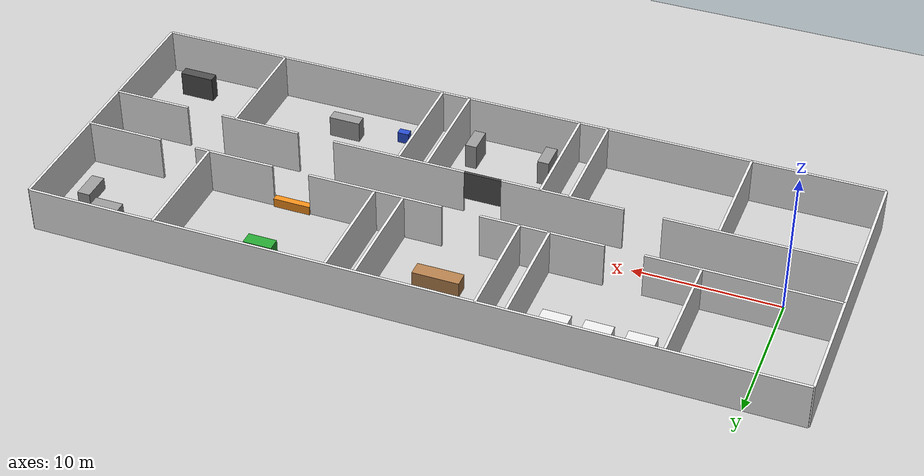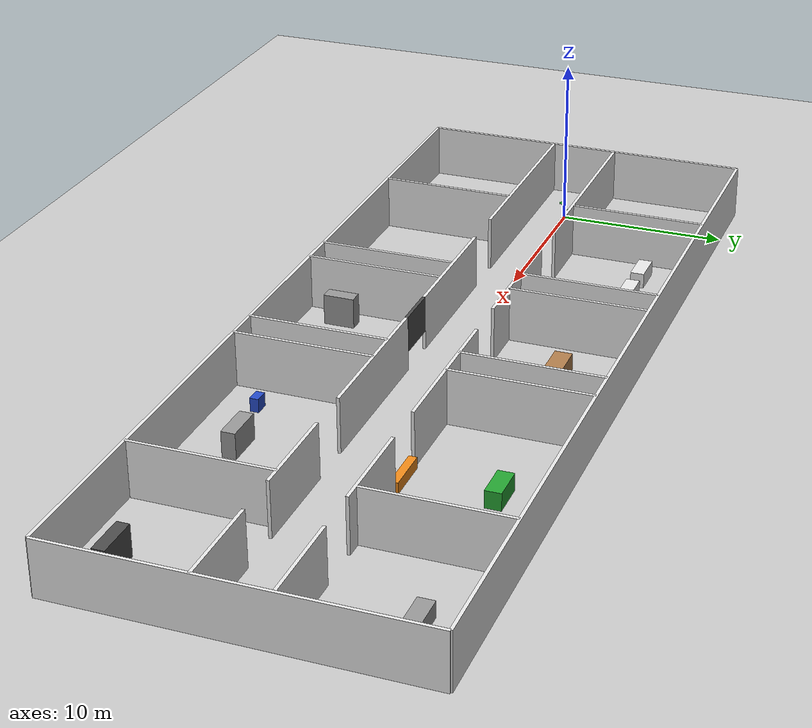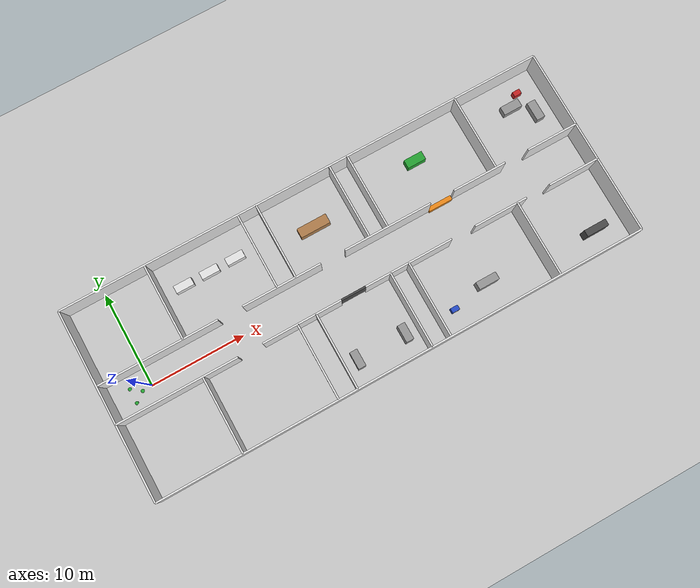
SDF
<?xml version='1.0' encoding='utf-8'?>
<sdf version="1.6">
  <world name="default">
    <physics name="default_physics" default="0" type="ode">
      <max_step_size>0.004</max_step_size>
      <real_time_update_rate>250</real_time_update_rate>
      <real_time_factor>1.0</real_time_factor>
    </physics>
    <scene>
      <ambient>0.65 0.65 0.65 1</ambient>
      <background>0.85 0.88 0.92 1</background>
    </scene>
    <include>
      <uri>model://sun</uri>
    </include>
    <include>
      <uri>model://ground_plane</uri>
    </include>
    <model name="outer_south_0">
      <static>true</static>
      <pose>22.000000 -10.000000 1.600000 0.000000 0.000000 0.000000</pose>
      <link name="link">
        <collision name="collision">
          <geometry>
            <box>
              <size>52.000000 0.180000 3.200000</size>
            </box>
          </geometry>
        </collision>
        <visual name="visual">
          <geometry>
            <box>
              <size>52.000000 0.180000 3.200000</size>
            </box>
          </geometry>
          <material>
            <script>
              <uri>file://media/materials/scripts/gazebo.material</uri>
              <name>Gazebo/White</name>
            </script>
          </material>
        </visual>
      </link>
    </model>
    <model name="outer_north_0">
      <static>true</static>
      <pose>22.000000 10.000000 1.600000 0.000000 0.000000 0.000000</pose>
      <link name="link">
        <collision name="collision">
          <geometry>
            <box>
              <size>52.000000 0.180000 3.200000</size>
            </box>
          </geometry>
        </collision>
        <visual name="visual">
          <geometry>
            <box>
              <size>52.000000 0.180000 3.200000</size>
            </box>
          </geometry>
          <material>
            <script>
              <uri>file://media/materials/scripts/gazebo.material</uri>
              <name>Gazebo/White</name>
            </script>
          </material>
        </visual>
      </link>
    </model>
    <model name="outer_west_0">
      <static>true</static>
      <pose>-4.000000 0.000000 1.600000 0.000000 0.000000 0.000000</pose>
      <link name="link">
        <collision name="collision">
          <geometry>
            <box>
              <size>0.180000 20.000000 3.200000</size>
            </box>
          </geometry>
        </collision>
        <visual name="visual">
          <geometry>
            <box>
              <size>0.180000 20.000000 3.200000</size>
            </box>
          </geometry>
          <material>
            <script>
              <uri>file://media/materials/scripts/gazebo.material</uri>
              <name>Gazebo/White</name>
            </script>
          </material>
        </visual>
      </link>
    </model>
    <model name="outer_east_0">
      <static>true</static>
      <pose>48.000000 0.000000 1.600000 0.000000 0.000000 0.000000</pose>
      <link name="link">
        <collision name="collision">
          <geometry>
            <box>
              <size>0.180000 20.000000 3.200000</size>
            </box>
          </geometry>
        </collision>
        <visual name="visual">
          <geometry>
            <box>
              <size>0.180000 20.000000 3.200000</size>
            </box>
          </geometry>
          <material>
            <script>
              <uri>file://media/materials/scripts/gazebo.material</uri>
              <name>Gazebo/White</name>
            </script>
          </material>
        </visual>
      </link>
    </model>
    <model name="corridor_north_0">
      <static>true</static>
      <pose>2.350000 2.000000 1.600000 0.000000 0.000000 0.000000</pose>
      <link name="link">
        <collision name="collision">
          <geometry>
            <box>
              <size>12.700000 0.180000 3.200000</size>
            </box>
          </geometry>
        </collision>
        <visual name="visual">
          <geometry>
            <box>
              <size>12.700000 0.180000 3.200000</size>
            </box>
          </geometry>
          <material>
            <script>
              <uri>file://media/materials/scripts/gazebo.material</uri>
              <name>Gazebo/White</name>
            </script>
          </material>
        </visual>
      </link>
    </model>
    <model name="corridor_north_1">
      <static>true</static>
      <pose>15.500000 2.000000 1.600000 0.000000 0.000000 0.000000</pose>
      <link name="link">
        <collision name="collision">
          <geometry>
            <box>
              <size>8.400000 0.180000 3.200000</size>
            </box>
          </geometry>
        </collision>
        <visual name="visual">
          <geometry>
            <box>
              <size>8.400000 0.180000 3.200000</size>
            </box>
          </geometry>
          <material>
            <script>
              <uri>file://media/materials/scripts/gazebo.material</uri>
              <name>Gazebo/White</name>
            </script>
          </material>
        </visual>
      </link>
    </model>
    <model name="corridor_north_2">
      <static>true</static>
      <pose>27.000000 2.000000 1.600000 0.000000 0.000000 0.000000</pose>
      <link name="link">
        <collision name="collision">
          <geometry>
            <box>
              <size>9.400000 0.180000 3.200000</size>
            </box>
          </geometry>
        </collision>
        <visual name="visual">
          <geometry>
            <box>
              <size>9.400000 0.180000 3.200000</size>
            </box>
          </geometry>
          <material>
            <script>
              <uri>file://media/materials/scripts/gazebo.material</uri>
              <name>Gazebo/White</name>
            </script>
          </material>
        </visual>
      </link>
    </model>
    <model name="corridor_north_3">
      <static>true</static>
      <pose>37.150000 2.000000 1.600000 0.000000 0.000000 0.000000</pose>
      <link name="link">
        <collision name="collision">
          <geometry>
            <box>
              <size>5.700000 0.180000 3.200000</size>
            </box>
          </geometry>
        </collision>
        <visual name="visual">
          <geometry>
            <box>
              <size>5.700000 0.180000 3.200000</size>
            </box>
          </geometry>
          <material>
            <script>
              <uri>file://media/materials/scripts/gazebo.material</uri>
              <name>Gazebo/White</name>
            </script>
          </material>
        </visual>
      </link>
    </model>
    <model name="corridor_south_0">
      <static>true</static>
      <pose>2.350000 -2.000000 1.600000 0.000000 0.000000 0.000000</pose>
      <link name="link">
        <collision name="collision">
          <geometry>
            <box>
              <size>12.700000 0.180000 3.200000</size>
            </box>
          </geometry>
        </collision>
        <visual name="visual">
          <geometry>
            <box>
              <size>12.700000 0.180000 3.200000</size>
            </box>
          </geometry>
          <material>
            <script>
              <uri>file://media/materials/scripts/gazebo.material</uri>
              <name>Gazebo/White</name>
            </script>
          </material>
        </visual>
      </link>
    </model>
    <model name="corridor_south_1">
      <static>true</static>
      <pose>15.500000 -2.000000 1.600000 0.000000 0.000000 0.000000</pose>
      <link name="link">
        <collision name="collision">
          <geometry>
            <box>
              <size>8.400000 0.180000 3.200000</size>
            </box>
          </geometry>
        </collision>
        <visual name="visual">
          <geometry>
            <box>
              <size>8.400000 0.180000 3.200000</size>
            </box>
          </geometry>
          <material>
            <script>
              <uri>file://media/materials/scripts/gazebo.material</uri>
              <name>Gazebo/White</name>
            </script>
          </material>
        </visual>
      </link>
    </model>
    <model name="corridor_south_2">
      <static>true</static>
      <pose>27.000000 -2.000000 1.600000 0.000000 0.000000 0.000000</pose>
      <link name="link">
        <collision name="collision">
          <geometry>
            <box>
              <size>9.400000 0.180000 3.200000</size>
            </box>
          </geometry>
        </collision>
        <visual name="visual">
          <geometry>
            <box>
              <size>9.400000 0.180000 3.200000</size>
            </box>
          </geometry>
          <material>
            <script>
              <uri>file://media/materials/scripts/gazebo.material</uri>
              <name>Gazebo/White</name>
            </script>
          </material>
        </visual>
      </link>
    </model>
    <model name="corridor_south_3">
      <static>true</static>
      <pose>37.150000 -2.000000 1.600000 0.000000 0.000000 0.000000</pose>
      <link name="link">
        <collision name="collision">
          <geometry>
            <box>
              <size>5.700000 0.180000 3.200000</size>
            </box>
          </geometry>
        </collision>
        <visual name="visual">
          <geometry>
            <box>
              <size>5.700000 0.180000 3.200000</size>
            </box>
          </geometry>
          <material>
            <script>
              <uri>file://media/materials/scripts/gazebo.material</uri>
              <name>Gazebo/White</name>
            </script>
          </material>
        </visual>
      </link>
    </model>
    <model name="upper_div_5_0">
      <static>true</static>
      <pose>5.000000 6.000000 1.600000 0.000000 0.000000 0.000000</pose>
      <link name="link">
        <collision name="collision">
          <geometry>
            <box>
              <size>0.180000 8.000000 3.200000</size>
            </box>
          </geometry>
        </collision>
        <visual name="visual">
          <geometry>
            <box>
              <size>0.180000 8.000000 3.200000</size>
            </box>
          </geometry>
          <material>
            <script>
              <uri>file://media/materials/scripts/gazebo.material</uri>
              <name>Gazebo/White</name>
            </script>
          </material>
        </visual>
      </link>
    </model>
    <model name="lower_div_5_0">
      <static>true</static>
      <pose>5.000000 -6.000000 1.600000 0.000000 0.000000 0.000000</pose>
      <link name="link">
        <collision name="collision">
          <geometry>
            <box>
              <size>0.180000 8.000000 3.200000</size>
            </box>
          </geometry>
        </collision>
        <visual name="visual">
          <geometry>
            <box>
              <size>0.180000 8.000000 3.200000</size>
            </box>
          </geometry>
          <material>
            <script>
              <uri>file://media/materials/scripts/gazebo.material</uri>
              <name>Gazebo/White</name>
            </script>
          </material>
        </visual>
      </link>
    </model>
    <model name="upper_div_15_0">
      <static>true</static>
      <pose>15.000000 6.000000 1.600000 0.000000 0.000000 0.000000</pose>
      <link name="link">
        <collision name="collision">
          <geometry>
            <box>
              <size>0.180000 8.000000 3.200000</size>
            </box>
          </geometry>
        </collision>
        <visual name="visual">
          <geometry>
            <box>
              <size>0.180000 8.000000 3.200000</size>
            </box>
          </geometry>
          <material>
            <script>
              <uri>file://media/materials/scripts/gazebo.material</uri>
              <name>Gazebo/White</name>
            </script>
          </material>
        </visual>
      </link>
    </model>
    <model name="lower_div_15_0">
      <static>true</static>
      <pose>15.000000 -6.000000 1.600000 0.000000 0.000000 0.000000</pose>
      <link name="link">
        <collision name="collision">
          <geometry>
            <box>
              <size>0.180000 8.000000 3.200000</size>
            </box>
          </geometry>
        </collision>
        <visual name="visual">
          <geometry>
            <box>
              <size>0.180000 8.000000 3.200000</size>
            </box>
          </geometry>
          <material>
            <script>
              <uri>file://media/materials/scripts/gazebo.material</uri>
              <name>Gazebo/White</name>
            </script>
          </material>
        </visual>
      </link>
    </model>
    <model name="upper_div_17_0">
      <static>true</static>
      <pose>17.000000 6.000000 1.600000 0.000000 0.000000 0.000000</pose>
      <link name="link">
        <collision name="collision">
          <geometry>
            <box>
              <size>0.180000 8.000000 3.200000</size>
            </box>
          </geometry>
        </collision>
        <visual name="visual">
          <geometry>
            <box>
              <size>0.180000 8.000000 3.200000</size>
            </box>
          </geometry>
          <material>
            <script>
              <uri>file://media/materials/scripts/gazebo.material</uri>
              <name>Gazebo/White</name>
            </script>
          </material>
        </visual>
      </link>
    </model>
    <model name="lower_div_17_0">
      <static>true</static>
      <pose>17.000000 -6.000000 1.600000 0.000000 0.000000 0.000000</pose>
      <link name="link">
        <collision name="collision">
          <geometry>
            <box>
              <size>0.180000 8.000000 3.200000</size>
            </box>
          </geometry>
        </collision>
        <visual name="visual">
          <geometry>
            <box>
              <size>0.180000 8.000000 3.200000</size>
            </box>
          </geometry>
          <material>
            <script>
              <uri>file://media/materials/scripts/gazebo.material</uri>
              <name>Gazebo/White</name>
            </script>
          </material>
        </visual>
      </link>
    </model>
    <model name="upper_div_25_0">
      <static>true</static>
      <pose>25.000000 6.000000 1.600000 0.000000 0.000000 0.000000</pose>
      <link name="link">
        <collision name="collision">
          <geometry>
            <box>
              <size>0.180000 8.000000 3.200000</size>
            </box>
          </geometry>
        </collision>
        <visual name="visual">
          <geometry>
            <box>
              <size>0.180000 8.000000 3.200000</size>
            </box>
          </geometry>
          <material>
            <script>
              <uri>file://media/materials/scripts/gazebo.material</uri>
              <name>Gazebo/White</name>
            </script>
          </material>
        </visual>
      </link>
    </model>
    <model name="lower_div_25_0">
      <static>true</static>
      <pose>25.000000 -6.000000 1.600000 0.000000 0.000000 0.000000</pose>
      <link name="link">
        <collision name="collision">
          <geometry>
            <box>
              <size>0.180000 8.000000 3.200000</size>
            </box>
          </geometry>
        </collision>
        <visual name="visual">
          <geometry>
            <box>
              <size>0.180000 8.000000 3.200000</size>
            </box>
          </geometry>
          <material>
            <script>
              <uri>file://media/materials/scripts/gazebo.material</uri>
              <name>Gazebo/White</name>
            </script>
          </material>
        </visual>
      </link>
    </model>
    <model name="upper_div_27_0">
      <static>true</static>
      <pose>27.000000 6.000000 1.600000 0.000000 0.000000 0.000000</pose>
      <link name="link">
        <collision name="collision">
          <geometry>
            <box>
              <size>0.180000 8.000000 3.200000</size>
            </box>
          </geometry>
        </collision>
        <visual name="visual">
          <geometry>
            <box>
              <size>0.180000 8.000000 3.200000</size>
            </box>
          </geometry>
          <material>
            <script>
              <uri>file://media/materials/scripts/gazebo.material</uri>
              <name>Gazebo/White</name>
            </script>
          </material>
        </visual>
      </link>
    </model>
    <model name="lower_div_27_0">
      <static>true</static>
      <pose>27.000000 -6.000000 1.600000 0.000000 0.000000 0.000000</pose>
      <link name="link">
        <collision name="collision">
          <geometry>
            <box>
              <size>0.180000 8.000000 3.200000</size>
            </box>
          </geometry>
        </collision>
        <visual name="visual">
          <geometry>
            <box>
              <size>0.180000 8.000000 3.200000</size>
            </box>
          </geometry>
          <material>
            <script>
              <uri>file://media/materials/scripts/gazebo.material</uri>
              <name>Gazebo/White</name>
            </script>
          </material>
        </visual>
      </link>
    </model>
    <model name="upper_div_39_0">
      <static>true</static>
      <pose>39.000000 6.000000 1.600000 0.000000 0.000000 0.000000</pose>
      <link name="link">
        <collision name="collision">
          <geometry>
            <box>
              <size>0.180000 8.000000 3.200000</size>
            </box>
          </geometry>
        </collision>
        <visual name="visual">
          <geometry>
            <box>
              <size>0.180000 8.000000 3.200000</size>
            </box>
          </geometry>
          <material>
            <script>
              <uri>file://media/materials/scripts/gazebo.material</uri>
              <name>Gazebo/White</name>
            </script>
          </material>
        </visual>
      </link>
    </model>
    <model name="lower_div_39_0">
      <static>true</static>
      <pose>39.000000 -6.000000 1.600000 0.000000 0.000000 0.000000</pose>
      <link name="link">
        <collision name="collision">
          <geometry>
            <box>
              <size>0.180000 8.000000 3.200000</size>
            </box>
          </geometry>
        </collision>
        <visual name="visual">
          <geometry>
            <box>
              <size>0.180000 8.000000 3.200000</size>
            </box>
          </geometry>
          <material>
            <script>
              <uri>file://media/materials/scripts/gazebo.material</uri>
              <name>Gazebo/White</name>
            </script>
          </material>
        </visual>
      </link>
    </model>
    <model name="service_fire_shutter">
      <static>true</static>
      <pose>21.000000 -2.000000 2.150000 0.000000 0.000000 0.000000</pose>
      <link name="link">
        <collision name="collision">
          <geometry>
            <box>
              <size>2.600000 0.180000 2.100000</size>
            </box>
          </geometry>
        </collision>
        <visual name="visual">
          <geometry>
            <box>
              <size>2.600000 0.180000 2.100000</size>
            </box>
          </geometry>
          <material>
            <script>
              <uri>file://media/materials/scripts/gazebo.material</uri>
              <name>Gazebo/DarkGrey</name>
            </script>
          </material>
        </visual>
      </link>
    </model>
    <model name="treatment_debris_barrier">
      <static>true</static>
      <pose>33.000000 2.000000 0.325000 0.000000 0.000000 0.000000</pose>
      <link name="link">
        <collision name="collision">
          <geometry>
            <box>
              <size>2.600000 0.450000 0.650000</size>
            </box>
          </geometry>
        </collision>
        <visual name="visual">
          <geometry>
            <box>
              <size>2.600000 0.450000 0.650000</size>
            </box>
          </geometry>
          <material>
            <script>
              <uri>file://media/materials/scripts/gazebo.material</uri>
              <name>Gazebo/Orange</name>
            </script>
          </material>
        </visual>
      </link>
    </model>
    <model name="ward_bed_0">
      <static>true</static>
      <pose>7.200000 7.000000 0.450000 0.000000 0.000000 0.000000</pose>
      <link name="link">
        <collision name="collision">
          <geometry>
            <box>
              <size>1.900000 0.800000 0.900000</size>
            </box>
          </geometry>
        </collision>
        <visual name="visual">
          <geometry>
            <box>
              <size>1.900000 0.800000 0.900000</size>
            </box>
          </geometry>
          <material>
            <script>
              <uri>file://media/materials/scripts/gazebo.material</uri>
              <name>Gazebo/White</name>
            </script>
          </material>
        </visual>
      </link>
    </model>
    <model name="ward_bed_1">
      <static>true</static>
      <pose>10.000000 7.000000 0.450000 0.000000 0.000000 0.000000</pose>
      <link name="link">
        <collision name="collision">
          <geometry>
            <box>
              <size>1.900000 0.800000 0.900000</size>
            </box>
          </geometry>
        </collision>
        <visual name="visual">
          <geometry>
            <box>
              <size>1.900000 0.800000 0.900000</size>
            </box>
          </geometry>
          <material>
            <script>
              <uri>file://media/materials/scripts/gazebo.material</uri>
              <name>Gazebo/White</name>
            </script>
          </material>
        </visual>
      </link>
    </model>
    <model name="ward_bed_2">
      <static>true</static>
      <pose>12.800000 7.000000 0.450000 0.000000 0.000000 0.000000</pose>
      <link name="link">
        <collision name="collision">
          <geometry>
            <box>
              <size>1.900000 0.800000 0.900000</size>
            </box>
          </geometry>
        </collision>
        <visual name="visual">
          <geometry>
            <box>
              <size>1.900000 0.800000 0.900000</size>
            </box>
          </geometry>
          <material>
            <script>
              <uri>file://media/materials/scripts/gazebo.material</uri>
              <name>Gazebo/White</name>
            </script>
          </material>
        </visual>
      </link>
    </model>
    <model name="nurse_station_desk">
      <static>true</static>
      <pose>21.000000 6.000000 0.550000 0.000000 0.000000 0.000000</pose>
      <link name="link">
        <collision name="collision">
          <geometry>
            <box>
              <size>3.200000 1.000000 1.100000</size>
            </box>
          </geometry>
        </collision>
        <visual name="visual">
          <geometry>
            <box>
              <size>3.200000 1.000000 1.100000</size>
            </box>
          </geometry>
          <material>
            <script>
              <uri>file://media/materials/scripts/gazebo.material</uri>
              <name>Gazebo/Wood</name>
            </script>
          </material>
        </visual>
      </link>
    </model>
    <model name="service_cabinet_1">
      <static>true</static>
      <pose>18.400000 -7.500000 0.900000 0.000000 0.000000 0.000000</pose>
      <link name="link">
        <collision name="collision">
          <geometry>
            <box>
              <size>0.800000 1.800000 1.800000</size>
            </box>
          </geometry>
        </collision>
        <visual name="visual">
          <geometry>
            <box>
              <size>0.800000 1.800000 1.800000</size>
            </box>
          </geometry>
          <material>
            <script>
              <uri>file://media/materials/scripts/gazebo.material</uri>
              <name>Gazebo/Grey</name>
            </script>
          </material>
        </visual>
      </link>
    </model>
    <model name="service_cabinet_2">
      <static>true</static>
      <pose>23.600000 -7.500000 0.900000 0.000000 0.000000 0.000000</pose>
      <link name="link">
        <collision name="collision">
          <geometry>
            <box>
              <size>0.800000 1.800000 1.800000</size>
            </box>
          </geometry>
        </collision>
        <visual name="visual">
          <geometry>
            <box>
              <size>0.800000 1.800000 1.800000</size>
            </box>
          </geometry>
          <material>
            <script>
              <uri>file://media/materials/scripts/gazebo.material</uri>
              <name>Gazebo/Grey</name>
            </script>
          </material>
        </visual>
      </link>
    </model>
    <model name="treatment_table">
      <static>true</static>
      <pose>33.000000 7.000000 0.500000 0.000000 0.000000 0.000000</pose>
      <link name="link">
        <collision name="collision">
          <geometry>
            <box>
              <size>2.000000 0.900000 1.000000</size>
            </box>
          </geometry>
        </collision>
        <visual name="visual">
          <geometry>
            <box>
              <size>2.000000 0.900000 1.000000</size>
            </box>
          </geometry>
          <material>
            <script>
              <uri>file://media/materials/scripts/gazebo.material</uri>
              <name>Gazebo/Green</name>
            </script>
          </material>
        </visual>
      </link>
    </model>
    <model name="imaging_console">
      <static>true</static>
      <pose>33.000000 -7.000000 0.750000 0.000000 0.000000 0.000000</pose>
      <link name="link">
        <collision name="collision">
          <geometry>
            <box>
              <size>2.200000 0.800000 1.500000</size>
            </box>
          </geometry>
        </collision>
        <visual name="visual">
          <geometry>
            <box>
              <size>2.200000 0.800000 1.500000</size>
            </box>
          </geometry>
          <material>
            <script>
              <uri>file://media/materials/scripts/gazebo.material</uri>
              <name>Gazebo/Grey</name>
            </script>
          </material>
        </visual>
      </link>
    </model>
    <model name="robot_start_1">
      <static>true</static>
      <pose>-2.000000 -0.750000 0.015000 0.000000 0.000000 0.000000</pose>
      <link name="link">
        <visual name="visual">
          <geometry>
            <cylinder>
              <radius>0.18</radius>
              <length>0.03</length>
            </cylinder>
          </geometry>
          <material>
            <script>
              <uri>file://media/materials/scripts/gazebo.material</uri>
              <name>Gazebo/Green</name>
            </script>
          </material>
        </visual>
      </link>
    </model>
    <model name="robot_start_2">
      <static>true</static>
      <pose>-2.000000 0.750000 0.015000 0.000000 0.000000 0.000000</pose>
      <link name="link">
        <visual name="visual">
          <geometry>
            <cylinder>
              <radius>0.18</radius>
              <length>0.03</length>
            </cylinder>
          </geometry>
          <material>
            <script>
              <uri>file://media/materials/scripts/gazebo.material</uri>
              <name>Gazebo/Green</name>
            </script>
          </material>
        </visual>
      </link>
    </model>
    <model name="robot_start_3">
      <static>true</static>
      <pose>-1.000000 0.000000 0.015000 0.000000 0.000000 0.000000</pose>
      <link name="link">
        <visual name="visual">
          <geometry>
            <cylinder>
              <radius>0.18</radius>
              <length>0.03</length>
            </cylinder>
          </geometry>
          <material>
            <script>
              <uri>file://media/materials/scripts/gazebo.material</uri>
              <name>Gazebo/Green</name>
            </script>
          </material>
        </visual>
      </link>
    </model>
    <gui fullscreen="0">
      <camera name="user_camera">
        <pose>22.000 -2.000 52.0 0 0.95 1.5708</pose>
      </camera>
    </gui>
    <model name="corridor_north_4">
      <static>true</static>
      <pose>45.300000 2.000000 1.600000 0.000000 0.000000 0.000000</pose>
      <link name="link">
        <collision name="collision">
          <geometry>
            <box>
              <size>5.400000 0.180000 3.200000</size>
            </box>
          </geometry>
        </collision>
        <visual name="visual">
          <geometry>
            <box>
              <size>5.400000 0.180000 3.200000</size>
            </box>
          </geometry>
          <material>
            <script>
              <uri>file://media/materials/scripts/gazebo.material</uri>
              <name>Gazebo/White</name>
            </script>
          </material>
        </visual>
      </link>
    </model>
    <model name="corridor_south_4">
      <static>true</static>
      <pose>45.300000 -2.000000 1.600000 0.000000 0.000000 0.000000</pose>
      <link name="link">
        <collision name="collision">
          <geometry>
            <box>
              <size>5.400000 0.180000 3.200000</size>
            </box>
          </geometry>
        </collision>
        <visual name="visual">
          <geometry>
            <box>
              <size>5.400000 0.180000 3.200000</size>
            </box>
          </geometry>
          <material>
            <script>
              <uri>file://media/materials/scripts/gazebo.material</uri>
              <name>Gazebo/White</name>
            </script>
          </material>
        </visual>
      </link>
    </model>
    <model name="far_isolation_bed_1">
      <static>true</static>
      <pose>44.200000 7.100000 0.450000 0.000000 0.000000 0.000000</pose>
      <link name="link">
        <collision name="collision">
          <geometry>
            <box>
              <size>2.000000 0.900000 0.900000</size>
            </box>
          </geometry>
        </collision>
        <visual name="visual">
          <geometry>
            <box>
              <size>2.000000 0.900000 0.900000</size>
            </box>
          </geometry>
          <material>
            <script>
              <uri>file://media/materials/scripts/gazebo.material</uri>
              <name>Gazebo/Grey</name>
            </script>
          </material>
        </visual>
      </link>
    </model>
    <model name="far_isolation_bed_2">
      <static>true</static>
      <pose>46.200000 5.600000 0.450000 0.000000 0.000000 1.570800</pose>
      <link name="link">
        <collision name="collision">
          <geometry>
            <box>
              <size>2.000000 0.900000 0.900000</size>
            </box>
          </geometry>
        </collision>
        <visual name="visual">
          <geometry>
            <box>
              <size>2.000000 0.900000 0.900000</size>
            </box>
          </geometry>
          <material>
            <script>
              <uri>file://media/materials/scripts/gazebo.material</uri>
              <name>Gazebo/Grey</name>
            </script>
          </material>
        </visual>
      </link>
    </model>
    <model name="far_archive_cabinet">
      <static>true</static>
      <pose>44.800000 -7.700000 0.900000 0.000000 0.000000 0.000000</pose>
      <link name="link">
        <collision name="collision">
          <geometry>
            <box>
              <size>2.400000 0.700000 1.800000</size>
            </box>
          </geometry>
        </collision>
        <visual name="visual">
          <geometry>
            <box>
              <size>2.400000 0.700000 1.800000</size>
            </box>
          </geometry>
          <material>
            <script>
              <uri>file://media/materials/scripts/gazebo.material</uri>
              <name>Gazebo/DarkGrey</name>
            </script>
          </material>
        </visual>
      </link>
    </model>
    <model name="red_target_case">
      <static>true</static>
      <pose>45.500000 8.100000 0.400000 0.000000 0.000000 3.141593</pose>
      <link name="link">
        <collision name="collision">
          <geometry>
            <box>
              <size>0.800000 0.500000 0.800000</size>
            </box>
          </geometry>
        </collision>
        <visual name="visual">
          <geometry>
            <box>
              <size>0.800000 0.500000 0.800000</size>
            </box>
          </geometry>
          <material>
            <script>
              <uri>file://media/materials/scripts/gazebo.material</uri>
              <name>Gazebo/Red</name>
            </script>
          </material>
        </visual>
      </link>
    </model>
    <model name="red_target_cross_vertical">
      <static>true</static>
      <pose>45.500000 8.356000 0.430000 0.000000 0.000000 3.141593</pose>
      <link name="link">
        <visual name="visual">
          <geometry>
            <box>
              <size>0.100000 0.025000 0.420000</size>
            </box>
          </geometry>
          <material>
            <script>
              <uri>file://media/materials/scripts/gazebo.material</uri>
              <name>Gazebo/White</name>
            </script>
          </material>
        </visual>
      </link>
    </model>
    <model name="red_target_cross_horizontal">
      <static>true</static>
      <pose>45.500000 8.356000 0.430000 0.000000 0.000000 3.141593</pose>
      <link name="link">
        <visual name="visual">
          <geometry>
            <box>
              <size>0.340000 0.025000 0.100000</size>
            </box>
          </geometry>
          <material>
            <script>
              <uri>file://media/materials/scripts/gazebo.material</uri>
              <name>Gazebo/White</name>
            </script>
          </material>
        </visual>
      </link>
    </model>
    <model name="blue_target_case">
      <static>true</static>
      <pose>29.000000 -7.800000 0.400000 0.000000 0.000000 0.000000</pose>
      <link name="link">
        <collision name="collision">
          <geometry>
            <box>
              <size>0.800000 0.500000 0.800000</size>
            </box>
          </geometry>
        </collision>
        <visual name="visual">
          <geometry>
            <box>
              <size>0.800000 0.500000 0.800000</size>
            </box>
          </geometry>
          <material>
            <script>
              <uri>file://media/materials/scripts/gazebo.material</uri>
              <name>Gazebo/Blue</name>
            </script>
          </material>
        </visual>
      </link>
    </model>
    <model name="blue_target_cross_vertical">
      <static>true</static>
      <pose>29.000000 -8.056000 0.430000 0.000000 0.000000 0.000000</pose>
      <link name="link">
        <visual name="visual">
          <geometry>
            <box>
              <size>0.100000 0.025000 0.420000</size>
            </box>
          </geometry>
          <material>
            <script>
              <uri>file://media/materials/scripts/gazebo.material</uri>
              <name>Gazebo/White</name>
            </script>
          </material>
        </visual>
      </link>
    </model>
    <model name="blue_target_cross_horizontal">
      <static>true</static>
      <pose>29.000000 -8.056000 0.430000 0.000000 0.000000 0.000000</pose>
      <link name="link">
        <visual name="visual">
          <geometry>
            <box>
              <size>0.340000 0.025000 0.100000</size>
            </box>
          </geometry>
          <material>
            <script>
              <uri>file://media/materials/scripts/gazebo.material</uri>
              <name>Gazebo/White</name>
            </script>
          </material>
        </visual>
      </link>
    </model>
  </world>
</sdf>
